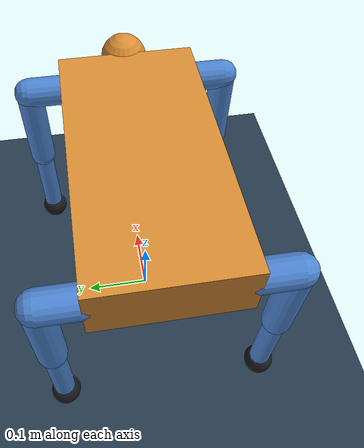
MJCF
<mujoco model="quadruped">

  <!-- angles written in DEGREES (easy to read). NOTE: data.qpos is
       always in RADIANS at runtime, including the keyframe below. -->
  <compiler angle="degree" autolimits="true"/>

  <!-- 2 ms physics step. implicitfast is stable and fast for robots. -->
  <option timestep="0.002" integrator="implicitfast" gravity="0 0 -9.81"/>

  <!-- make the offscreen render buffer big enough for MP4 recording -->
  <visual>
    <global offwidth="1280" offheight="960"/>
  </visual>

  <!-- ---------- shared defaults so every leg is identical ---------- -->
  <default>
    <default class="leg">
      <!-- a little damping + rotor inertia keeps the legs well behaved -->
      <joint type="hinge" damping="1.0" armature="0.01" frictionloss="0.05"/>
      <geom  type="capsule" density="800" friction="1.0 0.05 0.001"
             rgba="0.30 0.52 0.82 1"/>
      <!-- position servo: ctrl = desired joint angle (radians) -->
      <position kp="200" kv="10" forcerange="-80 80"/>
    </default>
  </default>

  <!-- ---------------------- scene assets ---------------------- -->
  <asset>
    <texture type="skybox" builtin="gradient" rgb1="0.5 0.7 0.9"
             rgb2="0.1 0.2 0.4" width="256" height="256"/>
    <texture name="grid" type="2d" builtin="checker"
             rgb1="0.2 0.3 0.4" rgb2="0.1 0.15 0.2"
             width="512" height="512" mark="cross" markrgb="0.8 0.8 0.8"/>
    <material name="grid" texture="grid" texrepeat="6 6"
              texuniform="true" reflectance="0.2"/>
    <material name="torso_mat" rgba="0.85 0.55 0.20 1"/>
    <material name="foot_mat"  rgba="0.10 0.10 0.12 1"/>
  </asset>

  <worldbody>
    <light pos="0 0 3" dir="0 0 -1" diffuse="0.9 0.9 0.9"/>
    <light pos="1 1 2" dir="-1 -1 -2" diffuse="0.4 0.4 0.4"/>
    <geom name="floor" type="plane" size="0 0 0.05" material="grid"/>

    <!-- ===================== TORSO ===================== -->
    <!-- starts at z = 0.30; the free joint lets it move & fall freely -->
    <body name="torso" pos="0 0 0.30">
      <freejoint name="root"/>
      <geom name="torso_geom" type="box" size="0.20 0.10 0.04"
            material="torso_mat" density="900"/>
      <!-- a small "head" so forward is obvious in the video -->
      <geom name="head" type="sphere" pos="0.22 0 0.02" size="0.035"
            material="torso_mat"/>

      <!-- camera that rides along with the robot -->
      <camera name="track" pos="0 -1.4 0.7" xyaxes="1 0 0 0 0.6 0.8"
              mode="trackcom"/>

      <!-- ================= FRONT-LEFT LEG ================= -->
      <body name="FL_hip" pos="0.18 0.10 0">
        <joint name="FL_hip_abduction" class="leg" axis="1 0 0" range="-40 40"/>
        <geom  class="leg" fromto="0 0 0  0 0.05 0" size="0.022"/>
        <body name="FL_thigh" pos="0 0.05 0">
          <joint name="FL_hip_flexion" class="leg" axis="0 1 0" range="-90 90"/>
          <geom  class="leg" fromto="0 0 0  0 0 -0.13" size="0.020"/>
          <body name="FL_calf" pos="0 0 -0.13">
            <joint name="FL_knee" class="leg" axis="0 1 0" range="-150 -10"/>
            <geom  class="leg" fromto="0 0 0  0 0 -0.14" size="0.015"/>
            <geom  name="FL_foot" type="sphere" pos="0 0 -0.14" size="0.022"
                   material="foot_mat" friction="1.5 0.1 0.01"/>
          </body>
        </body>
      </body>

      <!-- ================= FRONT-RIGHT LEG ================= -->
      <body name="FR_hip" pos="0.18 -0.10 0">
        <joint name="FR_hip_abduction" class="leg" axis="1 0 0" range="-40 40"/>
        <geom  class="leg" fromto="0 0 0  0 -0.05 0" size="0.022"/>
        <body name="FR_thigh" pos="0 -0.05 0">
          <joint name="FR_hip_flexion" class="leg" axis="0 1 0" range="-90 90"/>
          <geom  class="leg" fromto="0 0 0  0 0 -0.13" size="0.020"/>
          <body name="FR_calf" pos="0 0 -0.13">
            <joint name="FR_knee" class="leg" axis="0 1 0" range="-150 -10"/>
            <geom  class="leg" fromto="0 0 0  0 0 -0.14" size="0.015"/>
            <geom  name="FR_foot" type="sphere" pos="0 0 -0.14" size="0.022"
                   material="foot_mat" friction="1.5 0.1 0.01"/>
          </body>
        </body>
      </body>

      <!-- ================= HIND-LEFT LEG ================= -->
      <body name="HL_hip" pos="-0.18 0.10 0">
        <joint name="HL_hip_abduction" class="leg" axis="1 0 0" range="-40 40"/>
        <geom  class="leg" fromto="0 0 0  0 0.05 0" size="0.022"/>
        <body name="HL_thigh" pos="0 0.05 0">
          <joint name="HL_hip_flexion" class="leg" axis="0 1 0" range="-90 90"/>
          <geom  class="leg" fromto="0 0 0  0 0 -0.13" size="0.020"/>
          <body name="HL_calf" pos="0 0 -0.13">
            <joint name="HL_knee" class="leg" axis="0 1 0" range="-150 -10"/>
            <geom  class="leg" fromto="0 0 0  0 0 -0.14" size="0.015"/>
            <geom  name="HL_foot" type="sphere" pos="0 0 -0.14" size="0.022"
                   material="foot_mat" friction="1.5 0.1 0.01"/>
          </body>
        </body>
      </body>

      <!-- ================= HIND-RIGHT LEG ================= -->
      <body name="HR_hip" pos="-0.18 -0.10 0">
        <joint name="HR_hip_abduction" class="leg" axis="1 0 0" range="-40 40"/>
        <geom  class="leg" fromto="0 0 0  0 -0.05 0" size="0.022"/>
        <body name="HR_thigh" pos="0 -0.05 0">
          <joint name="HR_hip_flexion" class="leg" axis="0 1 0" range="-90 90"/>
          <geom  class="leg" fromto="0 0 0  0 0 -0.13" size="0.020"/>
          <body name="HR_calf" pos="0 0 -0.13">
            <joint name="HR_knee" class="leg" axis="0 1 0" range="-150 -10"/>
            <geom  class="leg" fromto="0 0 0  0 0 -0.14" size="0.015"/>
            <geom  name="HR_foot" type="sphere" pos="0 0 -0.14" size="0.022"
                   material="foot_mat" friction="1.5 0.1 0.01"/>
          </body>
        </body>
      </body>

    </body>
  </worldbody>

  <!-- ------------- one position actuator per joint ------------- -->
  <actuator>
    <position class="leg" name="FL_abd"  joint="FL_hip_abduction"/>
    <position class="leg" name="FL_flex" joint="FL_hip_flexion"/>
    <position class="leg" name="FL_knee" joint="FL_knee"/>

    <position class="leg" name="FR_abd"  joint="FR_hip_abduction"/>
    <position class="leg" name="FR_flex" joint="FR_hip_flexion"/>
    <position class="leg" name="FR_knee" joint="FR_knee"/>

    <position class="leg" name="HL_abd"  joint="HL_hip_abduction"/>
    <position class="leg" name="HL_flex" joint="HL_hip_flexion"/>
    <position class="leg" name="HL_knee" joint="HL_knee"/>

    <position class="leg" name="HR_abd"  joint="HR_hip_abduction"/>
    <position class="leg" name="HR_flex" joint="HR_hip_flexion"/>
    <position class="leg" name="HR_knee" joint="HR_knee"/>
  </actuator>

  <keyframe>
    <key name="stand"
         qpos="0 0 0.255  1 0 0 0
               0  0.5 -1.0
               0  0.5 -1.0
               0  0.5 -1.0
               0  0.5 -1.0"
         ctrl="0  0.5 -1.0
               0  0.5 -1.0
               0  0.5 -1.0
               0  0.5 -1.0"/>
  </keyframe>

</mujoco>
